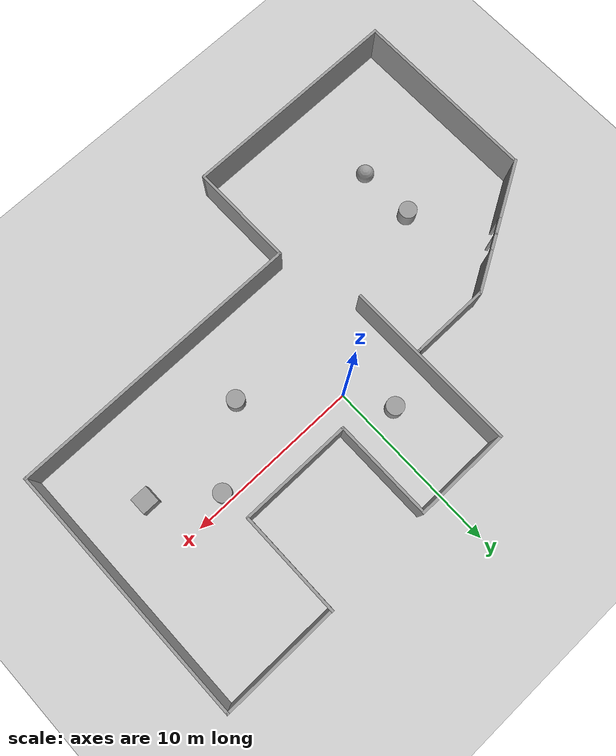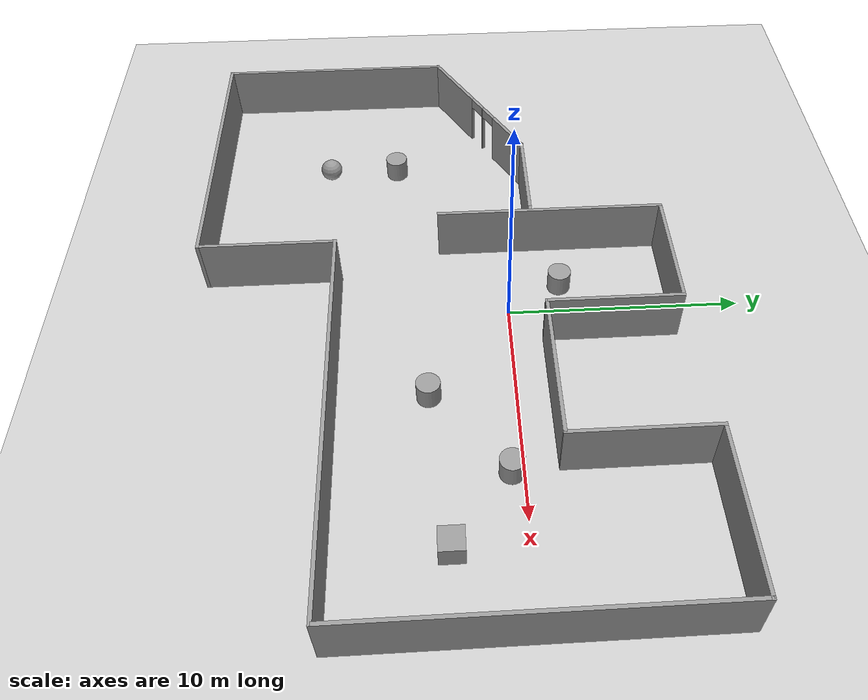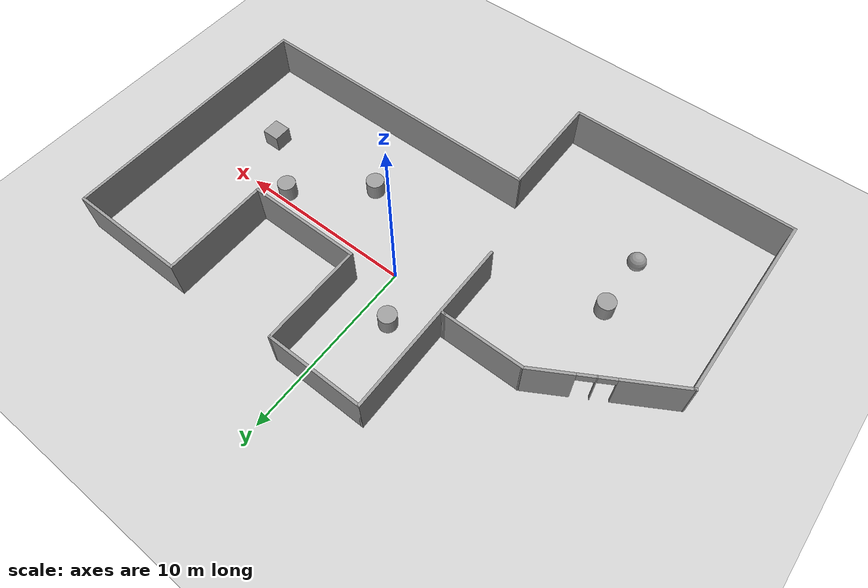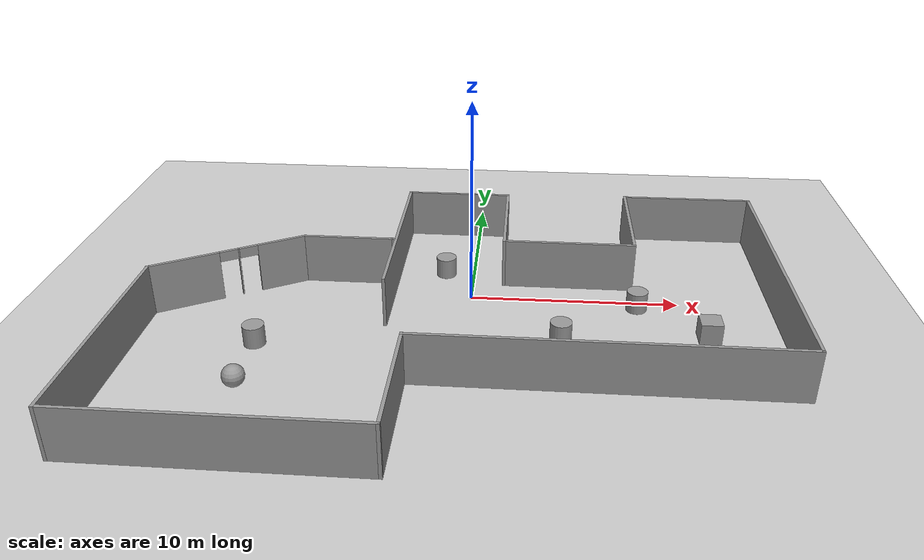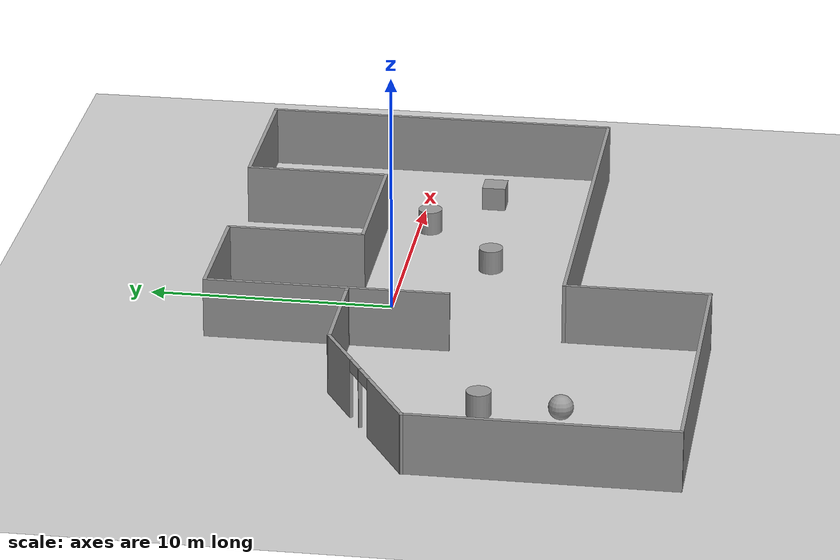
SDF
<sdf version="1.7">
 <world name="default">
  <light name="sun" type="directional">
   <pose>0 0 10 0 -0 0</pose>
   <diffuse>0.8 0.8 0.8 1</diffuse>
   <specular>0.2 0.2 0.2 1</specular>
   <attenuation>
    <range>1000</range>
    <constant>0.9</constant>
    <linear>0.01</linear>
    <quadratic>0.001</quadratic>
   </attenuation>
   <direction>-0.5 0.1 -0.9</direction>
   <spot><inner_angle>0</inner_angle><outer_angle>0</outer_angle><falloff>0</falloff></spot>
  </light>
  <model name="ground_plane">
   <static>1</static>
   <link name="link">
    <collision name="collision">
     <geometry><plane><normal>0 0 1</normal><size>100 100</size></plane></geometry>
     <surface>
      <contact><collide_bitmask>65535</collide_bitmask></contact>
      <friction><ode><mu>100</mu><mu2>50</mu2></ode></friction>
     </surface>
    </collision>
    <visual name="visual">
     <cast_shadows>0</cast_shadows>
     <geometry><plane><normal>0 0 1</normal><size>100 100</size></plane></geometry>
     <material>
      <script><uri>file://media/materials/scripts/gazebo.material</uri><name>Gazebo/Grey</name></script>
     </material>
    </visual>
   </link>
  </model>
  <gravity>0 0 -9.8</gravity>
  <magnetic_field>6e-06 2.3e-05 -4.2e-05</magnetic_field>
  <atmosphere type="adiabatic"/>
  <physics type="ode">
   <max_step_size>0.001</max_step_size>
   <real_time_factor>1</real_time_factor>
   <real_time_update_rate>1000</real_time_update_rate>
  </physics>
  <scene><ambient>0.4 0.4 0.4 1</ambient><background>0.7 0.7 0.7 1</background><shadows>1</shadows></scene>
  <spherical_coordinates>
   <surface_model>EARTH_WGS84</surface_model>
   <latitude_deg>0</latitude_deg>
   <longitude_deg>0</longitude_deg>
   <elevation>0</elevation>
   <heading_deg>0</heading_deg>
  </spherical_coordinates>
  <model name="House">
   <pose>-0.284954 -2.97505 0 0 -0 0</pose>
   <link name="Wall_0">
    <collision name="Wall_0_Collision">
     <geometry><box><size>10 0.15 2.5</size></box></geometry>
     <pose>0 0 1.25 0 -0 0</pose>
    </collision>
    <visual name="Wall_0_Visual">
     <pose>0 0 1.25 0 -0 0</pose>
     <geometry><box><size>10 0.15 2.5</size></box></geometry>
     <material>
      <script><uri>file://media/materials/scripts/gazebo.material</uri><name>Gazebo/Grey</name></script>
      <ambient>1 1 1 1</ambient>
     </material>
     <meta><layer>0</layer></meta>
    </visual>
    <pose>-3.54505 5.05005 0 0 -0 1.5708</pose>
   </link>
   <link name="Wall_1">
    <collision name="Wall_1_Collision">
     <geometry><box><size>5.5 0.15 2.5</size></box></geometry>
     <pose>0 0 1.25 0 -0 0</pose>
    </collision>
    <visual name="Wall_1_Visual">
     <pose>0 0 1.25 0 -0 0</pose>
     <geometry><box><size>5.5 0.15 2.5</size></box></geometry>
     <material>
      <script><uri>file://media/materials/scripts/gazebo.material</uri><name>Gazebo/Grey</name></script>
      <ambient>1 1 1 1</ambient>
     </material>
     <meta><layer>0</layer></meta>
    </visual>
    <pose>-0.870046 9.97505 0 0 -0 0</pose>
   </link>
   <link name="Wall_10">
    <collision name="Wall_10_Collision">
     <geometry><box><size>10.7409 0.15 2.5</size></box></geometry>
     <pose>0 0 1.25 0 -0 0</pose>
    </collision>
    <visual name="Wall_10_Visual">
     <pose>0 0 1.25 0 -0 0</pose>
     <geometry><box><size>10.7409 0.15 2.5</size></box></geometry>
     <material>
      <script><uri>file://media/materials/scripts/gazebo.material</uri><name>Gazebo/Grey</name></script>
      <ambient>1 1 1 1</ambient>
     </material>
     <meta><layer>0</layer></meta>
    </visual>
    <pose>-14.696 -4.9296 0 0 -0 1.57097</pose>
   </link>
   <link name="Wall_11">
    <pose>-11.4366 2.26574 0 0 -0 0.523599</pose>
    <visual name="Wall_11_Visual_0">
     <pose>-2.15396 0 1.25 0 -0 0</pose>
     <geometry><box><size>3.44208 0.15 2.5</size></box></geometry>
     <material>
      <script><uri>file://media/materials/scripts/gazebo.material</uri><name>Gazebo/Grey</name></script>
      <ambient>1 1 1 1</ambient>
     </material>
     <meta><layer>0</layer></meta>
    </visual>
    <collision name="Wall_11_Collision_0">
     <geometry><box><size>3.44208 0.15 2.5</size></box></geometry>
     <pose>-2.15396 0 1.25 0 -0 0</pose>
    </collision>
    <visual name="Wall_11_Visual_1">
     <pose>0.495867 0 1.25 0 -0 0</pose>
     <geometry><box><size>0.057566 0.15 2.5</size></box></geometry>
     <material>
      <script><uri>file://media/materials/scripts/gazebo.material</uri><name>Gazebo/Grey</name></script>
      <ambient>1 1 1 1</ambient>
     </material>
     <meta><layer>0</layer></meta>
    </visual>
    <collision name="Wall_11_Collision_1">
     <geometry><box><size>0.057566 0.15 2.5</size></box></geometry>
     <pose>0.495867 0 1.25 0 -0 0</pose>
    </collision>
    <visual name="Wall_11_Visual_2">
     <pose>2.64982 0 1.25 0 -0 0</pose>
     <geometry><box><size>2.45035 0.15 2.5</size></box></geometry>
     <material>
      <script><uri>file://media/materials/scripts/gazebo.material</uri><name>Gazebo/Grey</name></script>
      <ambient>1 1 1 1</ambient>
     </material>
     <meta><layer>0</layer></meta>
    </visual>
    <collision name="Wall_11_Collision_2">
     <geometry><box><size>2.45035 0.15 2.5</size></box></geometry>
     <pose>2.64982 0 1.25 0 -0 0</pose>
    </collision>
    <visual name="Wall_11_Visual_3">
     <pose>0.017084 0 2.25 0 -0 0</pose>
     <geometry><box><size>0.9 0.15 0.5</size></box></geometry>
     <material>
      <script><uri>file://media/materials/scripts/gazebo.material</uri><name>Gazebo/Grey</name></script>
      <ambient>1 1 1 1</ambient>
     </material>
     <meta><layer>0</layer></meta>
    </visual>
    <collision name="Wall_11_Collision_3">
     <geometry><box><size>0.9 0.15 0.5</size></box></geometry>
     <pose>0.017084 0 2.25 0 -0 0</pose>
    </collision>
    <visual name="Wall_11_Visual_4">
     <pose>0.97465 0 2.25 0 -0 0</pose>
     <geometry><box><size>0.9 0.15 0.5</size></box></geometry>
     <material>
      <script><uri>file://media/materials/scripts/gazebo.material</uri><name>Gazebo/Grey</name></script>
      <ambient>1 1 1 1</ambient>
     </material>
     <meta><layer>0</layer></meta>
    </visual>
    <collision name="Wall_11_Collision_4">
     <geometry><box><size>0.9 0.15 0.5</size></box></geometry>
     <pose>0.97465 0 2.25 0 -0 0</pose>
    </collision>
   </link>
   <link name="Wall_12">
    <collision name="Wall_12_Collision">
     <geometry><box><size>4.50188 0.15 2.5</size></box></geometry>
     <pose>0 0 1.25 0 -0 0</pose>
    </collision>
    <visual name="Wall_12_Visual">
     <pose>0 0 1.25 0 -0 0</pose>
     <geometry><box><size>4.50188 0.15 2.5</size></box></geometry>
     <material>
      <script><uri>file://media/materials/scripts/gazebo.material</uri><name>Gazebo/Grey</name></script>
      <ambient>1 1 1 1</ambient>
     </material>
     <meta><layer>0</layer></meta>
    </visual>
    <pose>-5.93919 4.1704 0 0 -0 0.002141</pose>
   </link>
   <link name="Wall_13">
    <collision name="Wall_13_Collision">
     <geometry><box><size>0.25 0.15 2.5</size></box></geometry>
     <pose>0 0 1.25 0 -0 0</pose>
    </collision>
    <visual name="Wall_13_Visual">
     <pose>0 0 1.25 0 -0 0</pose>
     <geometry><box><size>0.25 0.15 2.5</size></box></geometry>
     <material>
      <script><uri>file://media/materials/scripts/gazebo.material</uri><name>Gazebo/Grey</name></script>
      <ambient>1 1 1 1</ambient>
     </material>
     <meta><layer>0</layer></meta>
    </visual>
    <pose>-3.71325 4.17505 0 0 -0 0</pose>
   </link>
   <link name="Wall_2">
    <collision name="Wall_2_Collision">
     <geometry><box><size>5.75 0.15 2.5</size></box></geometry>
     <pose>0 0 1.25 0 -0 0</pose>
    </collision>
    <visual name="Wall_2_Visual">
     <pose>0 0 1.25 0 -0 0</pose>
     <geometry><box><size>5.75 0.15 2.5</size></box></geometry>
     <material>
      <script><uri>file://media/materials/scripts/gazebo.material</uri><name>Gazebo/Grey</name></script>
      <ambient>1 1 1 1</ambient>
     </material>
     <meta><layer>0</layer></meta>
    </visual>
    <pose>1.80495 7.17505 0 0 -0 -1.5708</pose>
   </link>
   <link name="Wall_3">
    <collision name="Wall_3_Collision">
     <geometry><box><size>6.5 0.15 2.5</size></box></geometry>
     <pose>0 0 1.25 0 -0 0</pose>
    </collision>
    <visual name="Wall_3_Visual">
     <pose>0 0 1.25 0 -0 0</pose>
     <geometry><box><size>6.5 0.15 2.5</size></box></geometry>
     <material>
      <script><uri>file://media/materials/scripts/gazebo.material</uri><name>Gazebo/Grey</name></script>
      <ambient>1 1 1 1</ambient>
     </material>
     <meta><layer>0</layer></meta>
    </visual>
    <pose>4.97995 4.37505 0 0 -0 0</pose>
   </link>
   <link name="Wall_4">
    <collision name="Wall_4_Collision">
     <geometry><box><size>6 0.15 2.5</size></box></geometry>
     <pose>0 0 1.25 0 -0 0</pose>
    </collision>
    <visual name="Wall_4_Visual">
     <pose>0 0 1.25 0 -0 0</pose>
     <geometry><box><size>6 0.15 2.5</size></box></geometry>
     <material>
      <script><uri>file://media/materials/scripts/gazebo.material</uri><name>Gazebo/Grey</name></script>
      <ambient>1 1 1 1</ambient>
     </material>
     <meta><layer>0</layer></meta>
    </visual>
    <pose>8.15495 7.30005 0 0 -0 1.5708</pose>
   </link>
   <link name="Wall_5">
    <collision name="Wall_5_Collision">
     <geometry><box><size>6.75 0.15 2.5</size></box></geometry>
     <pose>0 0 1.25 0 -0 0</pose>
    </collision>
    <visual name="Wall_5_Visual">
     <pose>0 0 1.25 0 -0 0</pose>
     <geometry><box><size>6.75 0.15 2.5</size></box></geometry>
     <material>
      <script><uri>file://media/materials/scripts/gazebo.material</uri><name>Gazebo/Grey</name></script>
      <ambient>1 1 1 1</ambient>
     </material>
     <meta><layer>0</layer></meta>
    </visual>
    <pose>11.455 10.2251 0 0 -0 0</pose>
   </link>
   <link name="Wall_6">
    <collision name="Wall_6_Collision">
     <geometry><box><size>14.75 0.15 2.5</size></box></geometry>
     <pose>0 0 1.25 0 -0 0</pose>
    </collision>
    <visual name="Wall_6_Visual">
     <pose>0 0 1.25 0 -0 0</pose>
     <geometry><box><size>14.75 0.15 2.5</size></box></geometry>
     <material>
      <script><uri>file://media/materials/scripts/gazebo.material</uri><name>Gazebo/Grey</name></script>
      <ambient>1 1 1 1</ambient>
     </material>
     <meta><layer>0</layer></meta>
    </visual>
    <pose>14.755 2.92505 0 0 -0 -1.5708</pose>
   </link>
   <link name="Wall_7">
    <collision name="Wall_7_Collision">
     <geometry><box><size>17 0.15 2.5</size></box></geometry>
     <pose>0 0 1.25 0 -0 0</pose>
    </collision>
    <visual name="Wall_7_Visual">
     <pose>0 0 1.25 0 -0 0</pose>
     <geometry><box><size>17 0.15 2.5</size></box></geometry>
     <material>
      <script><uri>file://media/materials/scripts/gazebo.material</uri><name>Gazebo/Grey</name></script>
      <ambient>1 1 1 1</ambient>
     </material>
     <meta><layer>0</layer></meta>
    </visual>
    <pose>6.32995 -4.37495 0 0 -0 3.14159</pose>
   </link>
   <link name="Wall_8">
    <collision name="Wall_8_Collision">
     <geometry><box><size>6 0.15 2.5</size></box></geometry>
     <pose>0 0 1.25 0 -0 0</pose>
    </collision>
    <visual name="Wall_8_Visual">
     <pose>0 0 1.25 0 -0 0</pose>
     <geometry><box><size>6 0.15 2.5</size></box></geometry>
     <material>
      <script><uri>file://media/materials/scripts/gazebo.material</uri><name>Gazebo/Grey</name></script>
      <ambient>1 1 1 1</ambient>
     </material>
     <meta><layer>0</layer></meta>
    </visual>
    <pose>-2.09505 -7.29995 0 0 -0 -1.5708</pose>
   </link>
   <link name="Wall_9">
    <collision name="Wall_9_Collision">
     <geometry><box><size>12.75 0.15 2.5</size></box></geometry>
     <pose>0 0 1.25 0 -0 0</pose>
    </collision>
    <visual name="Wall_9_Visual">
     <pose>0 0 1.25 0 -0 0</pose>
     <geometry><box><size>12.75 0.15 2.5</size></box></geometry>
     <material>
      <script><uri>file://media/materials/scripts/gazebo.material</uri><name>Gazebo/Grey</name></script>
      <ambient>1 1 1 1</ambient>
     </material>
     <meta><layer>0</layer></meta>
    </visual>
    <pose>-8.39505 -10.2249 0 0 -0 3.14159</pose>
   </link>
   <static>1</static>
  </model>
  <model name="unit_cylinder">
   <pose>-1.43355 2.31024 0.499998 3e-06 -4e-06 0</pose>
   <link name="link">
    <inertial>
     <mass>1</mass>
     <inertia><ixx>0.145833</ixx><ixy>0</ixy><ixz>0</ixz><iyy>0.145833</iyy><iyz>0</iyz><izz>0.125</izz></inertia>
    </inertial>
    <collision name="collision">
     <geometry><cylinder><radius>0.5</radius><length>1</length></cylinder></geometry>
    </collision>
    <visual name="visual">
     <geometry><cylinder><radius>0.5</radius><length>1</length></cylinder></geometry>
     <material>
      <script><name>Gazebo/Grey</name><uri>file://media/materials/scripts/gazebo.material</uri></script>
     </material>
    </visual>
   </link>
  </model>
  <model name="unit_cylinder_0">
   <pose>4.28599 -3.54677 0.499992 -3e-06 -4e-06 -0</pose>
   <link name="link">
    <inertial>
     <mass>1</mass>
     <inertia><ixx>0.145833</ixx><ixy>0</ixy><ixz>0</ixz><iyy>0.145833</iyy><iyz>0</iyz><izz>0.125</izz></inertia>
    </inertial>
    <collision name="collision">
     <geometry><cylinder><radius>0.5</radius><length>1</length></cylinder></geometry>
    </collision>
    <visual name="visual">
     <geometry><cylinder><radius>0.5</radius><length>1</length></cylinder></geometry>
     <material>
      <script><name>Gazebo/Grey</name><uri>file://media/materials/scripts/gazebo.material</uri></script>
     </material>
    </visual>
   </link>
  </model>
  <model name="unit_cylinder_1">
   <pose>7.97112 -0.483622 0.499993 -3e-06 -3e-06 0</pose>
   <link name="link">
    <inertial>
     <mass>1</mass>
     <inertia><ixx>0.145833</ixx><ixy>0</ixy><ixz>0</ixz><iyy>0.145833</iyy><iyz>0</iyz><izz>0.125</izz></inertia>
    </inertial>
    <collision name="collision">
     <geometry><cylinder><radius>0.5</radius><length>1</length></cylinder></geometry>
    </collision>
    <visual name="visual">
     <geometry><cylinder><radius>0.5</radius><length>1</length></cylinder></geometry>
     <material>
      <script><name>Gazebo/Grey</name><uri>file://media/materials/scripts/gazebo.material</uri></script>
     </material>
    </visual>
   </link>
  </model>
  <model name="unit_box">
   <pose>11.0309 -2.85861 0.499995 0 1e-05 0</pose>
   <link name="link">
    <inertial>
     <mass>1</mass>
     <inertia>
      <ixx>0.166667</ixx>
      <ixy>0</ixy>
      <ixz>0</ixz>
      <iyy>0.166667</iyy>
      <iyz>0</iyz>
      <izz>0.166667</izz>
     </inertia>
    </inertial>
    <collision name="collision"><geometry><box><size>1 1 1</size></box></geometry></collision>
    <visual name="visual">
     <geometry><box><size>1 1 1</size></box></geometry>
     <material>
      <script><name>Gazebo/Grey</name><uri>file://media/materials/scripts/gazebo.material</uri></script>
     </material>
    </visual>
   </link>
  </model>
  <model name="unit_sphere">
   <pose>-9.42156 -8.04937 0.5 0 -0 0</pose>
   <link name="link">
    <inertial>
     <mass>1</mass>
     <inertia><ixx>0.1</ixx><ixy>0</ixy><ixz>0</ixz><iyy>0.1</iyy><iyz>0</iyz><izz>0.1</izz></inertia>
    </inertial>
    <collision name="collision"><geometry><sphere><radius>0.5</radius></sphere></geometry></collision>
    <visual name="visual">
     <geometry><sphere><radius>0.5</radius></sphere></geometry>
     <material>
      <script><name>Gazebo/Grey</name><uri>file://media/materials/scripts/gazebo.material</uri></script>
     </material>
    </visual>
   </link>
  </model>
  <model name="unit_cylinder_2">
   <pose>-9.47197 -4.83544 0.499997 3e-06 4e-06 -0</pose>
   <link name="link">
    <inertial>
     <mass>1</mass>
     <inertia><ixx>0.145833</ixx><ixy>0</ixy><ixz>0</ixz><iyy>0.145833</iyy><iyz>0</iyz><izz>0.125</izz></inertia>
    </inertial>
    <collision name="collision">
     <geometry><cylinder><radius>0.5</radius><length>1</length></cylinder></geometry>
    </collision>
    <visual name="visual">
     <geometry><cylinder><radius>0.5</radius><length>1</length></cylinder></geometry>
     <material>
      <script><name>Gazebo/Grey</name><uri>file://media/materials/scripts/gazebo.material</uri></script>
     </material>
    </visual>
   </link>
  </model>
 </world>
</sdf>
